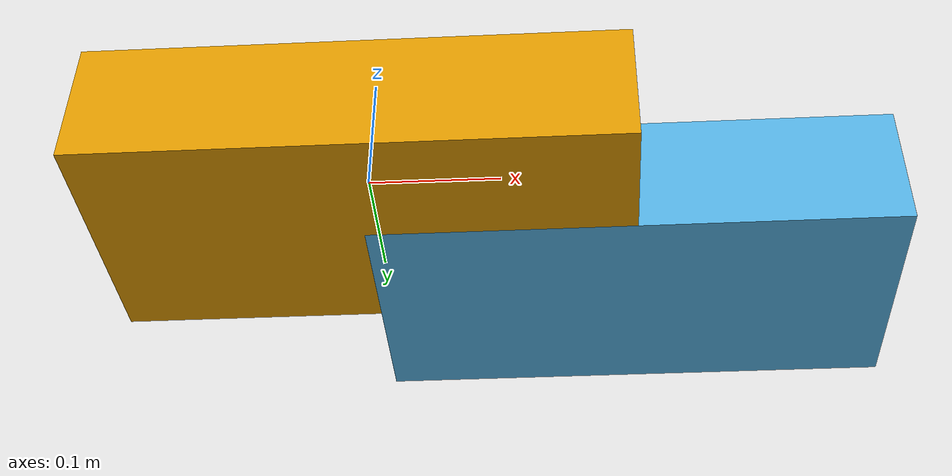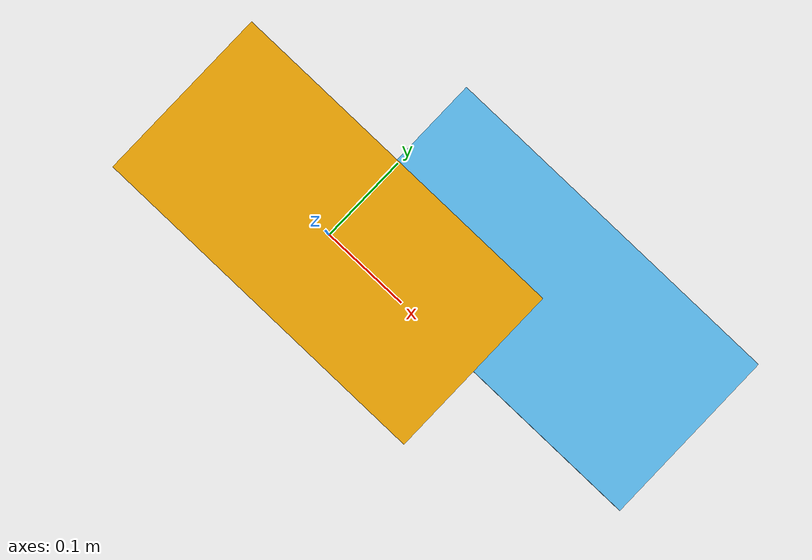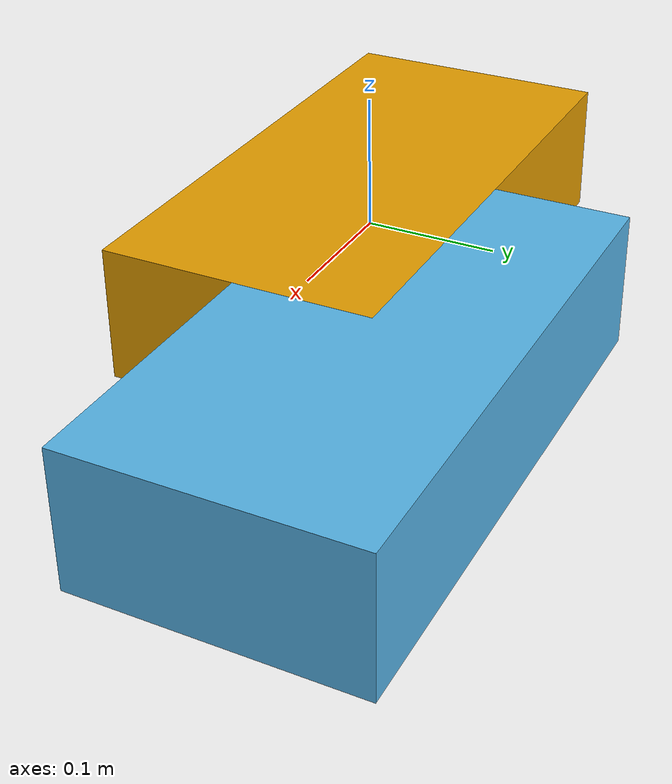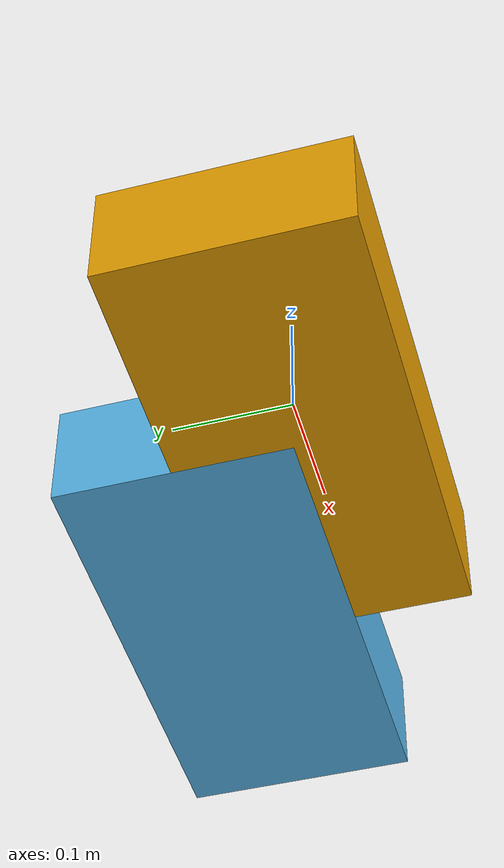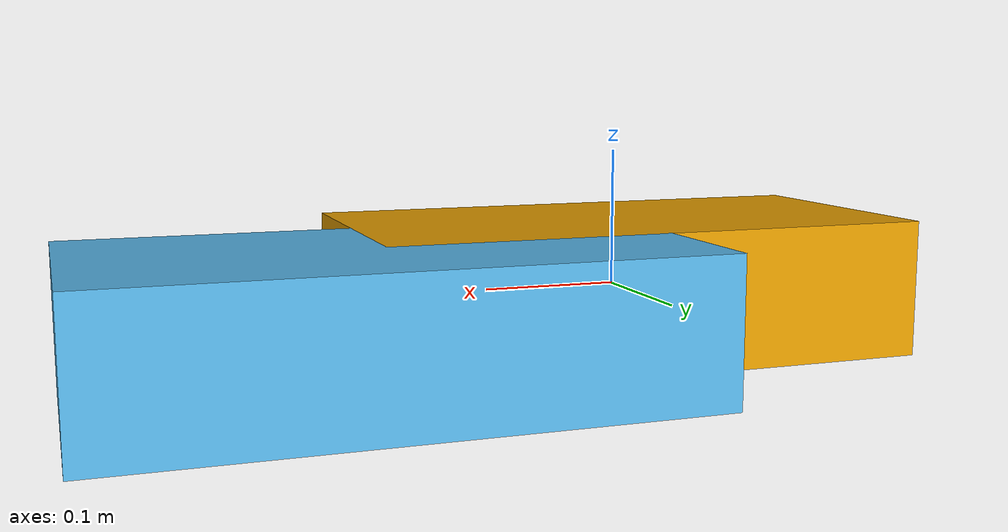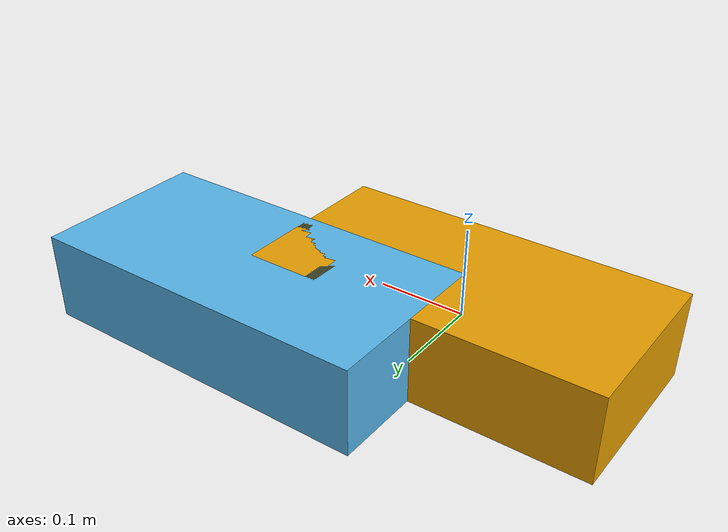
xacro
<?xml version="1.0"?>
<robot xmlns:xacro="http://www.ros.org/wiki/xacro" name="go2">
    <link name="base_link">
        <visual>
            <geometry>
                <box size="0.4 0.2 0.1"/>
            </geometry>
        </visual>
    </link>

    <link name="front_left_leg">
        <visual>
            <geometry>
                <box size="0.4 0.2 0.1"/>
            </geometry>
        </visual>
    </link>
    <joint name="front_left_leg_joint" type="continuous">
        <parent link="base_link"/>
        <child link="front_left_leg"/>
        <origin xyz="0.2 0.1 0" rpy="0 0 0"/>
    </joint>
</robot>
